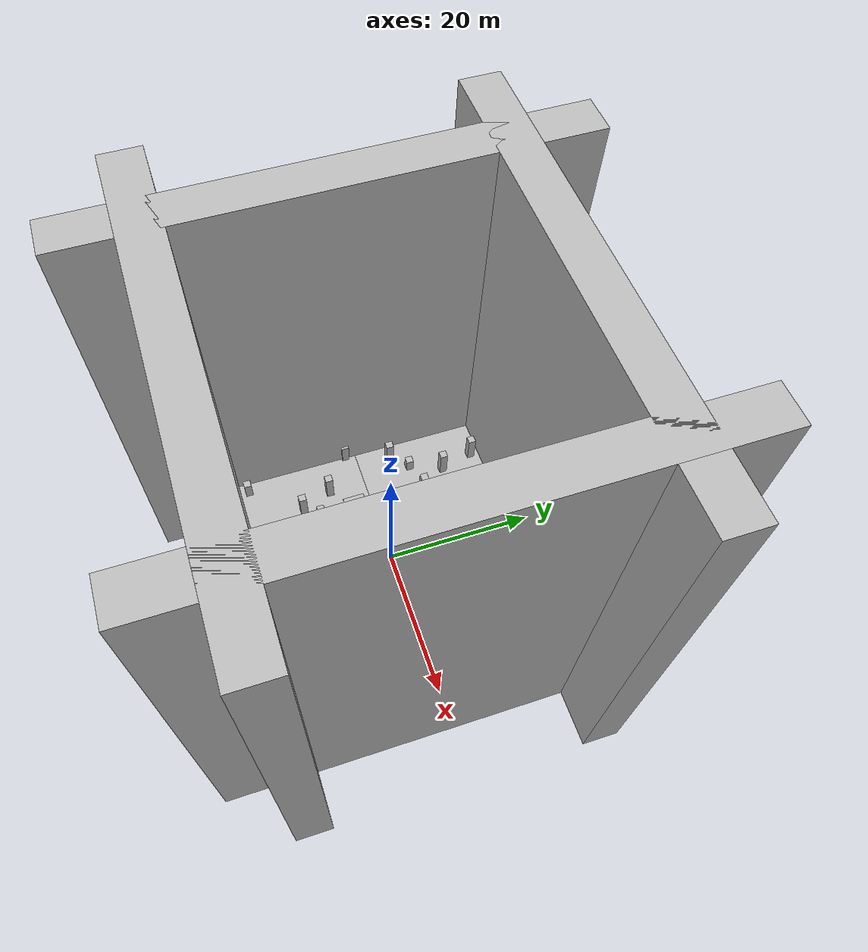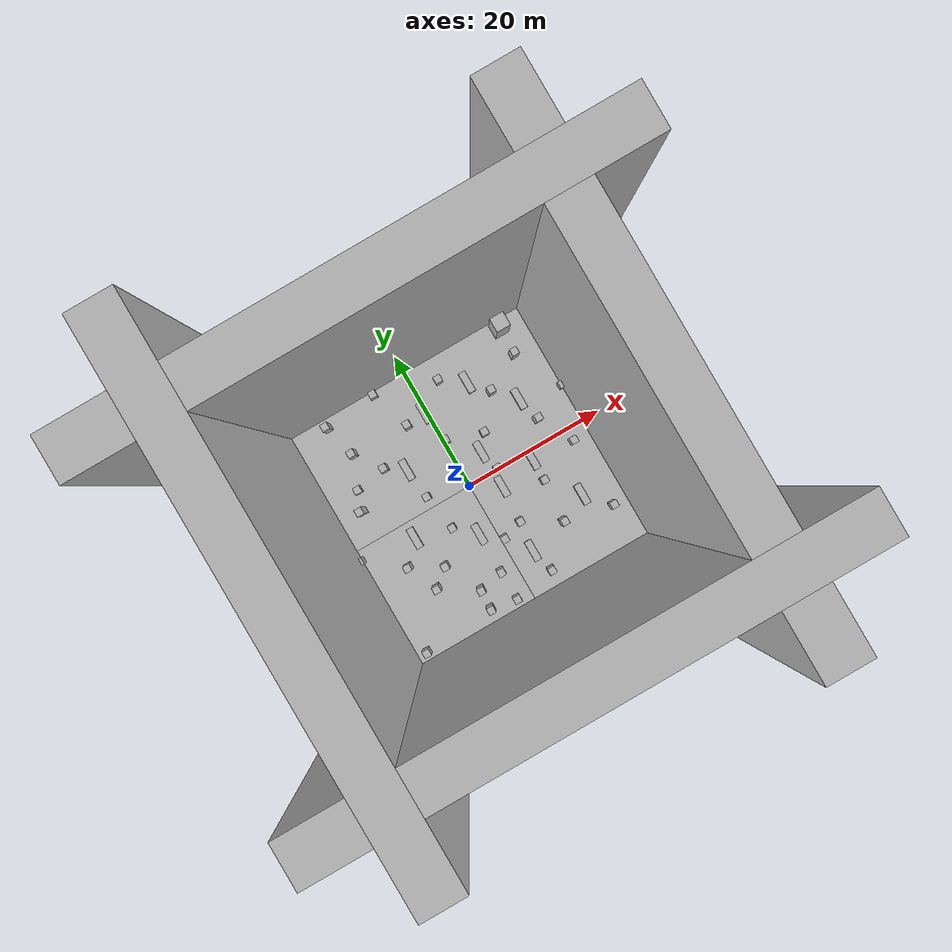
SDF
<sdf version="1.6">
 <world name="default">
  <light name="sun" type="directional">
   <pose>0 0 10 0 -0 0</pose>
   <diffuse>0.8 0.8 0.8 1</diffuse>
   <specular>0.2 0.2 0.2 1</specular>
   <attenuation>
    <range>1000</range>
    <constant>0.9</constant>
    <linear>0.01</linear>
    <quadratic>0.001</quadratic>
   </attenuation>
   <direction>-0.5 0.1 -0.9</direction>
  </light>
  <plugin name="ros_interface_plugin" filename="librotors_gazebo_ros_interface_plugin.so"/>
  <model name="gd3">
   <static>1</static>
   <link name="chassis">
    <pose>-10 10 -0.1 0 -0 0</pose>
    <collision name="collision"><geometry><box><size>20 20 0.2</size></box></geometry></collision>
    <visual name="visual">
     <geometry>
      <mesh><uri>model://ground_surface/meshes/simple_box.dae</uri><scale>20 20 0.2</scale></mesh>
     </geometry>
     <material>
      <script>
       <uri>model://ground_surface/materials/scripts</uri>
       <uri>model://ground_surface/materials/textures</uri>
       <name>BrickBox/Ground</name>
      </script>
     </material>
    </visual>
   </link>
  </model>
  <model name="bb2">
   <static>1</static>
   <link name="chassis">
    <pose>19.0671 -12.1318 1.25 0 -0 0</pose>
    <collision name="collision"><geometry><box><size>0.7 0.7 2.5</size></box></geometry></collision>
    <visual name="visual">
     <geometry>
      <mesh><uri>model://brick_box_1/meshes/simple_box.dae</uri><scale>0.7 0.7 2.5</scale></mesh>
     </geometry>
     <material>
      <script>
       <uri>model://brick_box_1/materials/scripts</uri>
       <uri>model://brick_box_1/materials/textures</uri>
       <name>BrickBox/Diffuse</name>
      </script>
     </material>
    </visual>
   </link>
  </model>
  <model name="bb3">
   <static>1</static>
   <link name="chassis">
    <pose>19.0671 -0.13179 1 0 -0 0</pose>
    <collision name="collision"><geometry><box><size>1 1 2</size></box></geometry></collision>
    <visual name="visual">
     <geometry><mesh><uri>model://brick_box_1/meshes/simple_box.dae</uri><scale>1 1 2</scale></mesh></geometry>
     <material>
      <script>
       <uri>model://brick_box_1/materials/scripts</uri>
       <uri>model://brick_box_1/materials/textures</uri>
       <name>BrickBox/Diffuse</name>
      </script>
     </material>
    </visual>
   </link>
  </model>
  <model name="bb9">
   <static>1</static>
   <link name="chassis">
    <pose>-14 4.25 3 0 -0 0</pose>
    <collision name="collision"><geometry><box><size>1 1 6</size></box></geometry></collision>
    <visual name="visual">
     <geometry><mesh><uri>model://brick_box_3/meshes/simple_box.dae</uri><scale>1 1 6</scale></mesh></geometry>
     <material>
      <script>
       <uri>model://brick_box_3/materials/scripts</uri>
       <uri>model://brick_box_3/materials/textures</uri>
       <name>BrickBox/Sea</name>
      </script>
     </material>
    </visual>
   </link>
  </model>
  <model name="bb10">
   <static>1</static>
   <link name="chassis">
    <pose>14 16.25 3 0 -0 0</pose>
    <collision name="collision"><geometry><box><size>2 2 6</size></box></geometry></collision>
    <visual name="visual">
     <geometry><mesh><uri>model://brick_box_3/meshes/simple_box.dae</uri><scale>2 2 6</scale></mesh></geometry>
     <material>
      <script>
       <uri>model://brick_box_3/materials/scripts</uri>
       <uri>model://brick_box_3/materials/textures</uri>
       <name>BrickBox/Sea</name>
      </script>
     </material>
    </visual>
   </link>
  </model>
  <model name="bb14">
   <static>1</static>
   <link name="chassis">
    <pose>9.0671 -1.13179 0.5 0 -0 0</pose>
    <collision name="collision"><geometry><box><size>1 3 1</size></box></geometry></collision>
    <visual name="visual">
     <geometry><mesh><uri>model://brick_box_3/meshes/simple_box.dae</uri><scale>1 3 1</scale></mesh></geometry>
     <material>
      <script>
       <uri>model://brick_box_3/materials/scripts</uri>
       <uri>model://brick_box_3/materials/textures</uri>
       <name>BrickBox/Sea</name>
      </script>
     </material>
    </visual>
   </link>
  </model>
  <model name="wall1">
   <static>1</static>
   <link name="chassis">
    <pose>-20 0 20 0 -0 0</pose>
    <collision name="collision"><geometry><box><size>5 60 60</size></box></geometry></collision>
    <visual name="visual">
     <geometry>
      <mesh><uri>model://ground_surface/meshes/simple_box.dae</uri><scale>5 60 60</scale></mesh>
     </geometry>
     <material>
      <script>
       <uri>model://ground_surface/materials/scripts</uri>
       <uri>model://ground_surface/materials/textures</uri>
       <name>BrickBox/Ground</name>
      </script>
     </material>
    </visual>
   </link>
  </model>
  <model name="wall2">
   <static>1</static>
   <link name="chassis">
    <pose>0 -20 20 0 -0 0</pose>
    <collision name="collision"><geometry><box><size>60 5 60</size></box></geometry></collision>
    <visual name="visual">
     <geometry>
      <mesh><uri>model://ground_surface/meshes/simple_box.dae</uri><scale>60 5 60</scale></mesh>
     </geometry>
     <material>
      <script>
       <uri>model://ground_surface/materials/scripts</uri>
       <uri>model://ground_surface/materials/textures</uri>
       <name>BrickBox/Ground</name>
      </script>
     </material>
    </visual>
   </link>
  </model>
  <model name="wall3">
   <static>1</static>
   <link name="chassis">
    <pose>0 20 20 0 -0 0</pose>
    <collision name="collision"><geometry><box><size>60 5 60</size></box></geometry></collision>
    <visual name="visual">
     <geometry>
      <mesh><uri>model://ground_surface/meshes/simple_box.dae</uri><scale>60 5 60</scale></mesh>
     </geometry>
     <material>
      <script>
       <uri>model://ground_surface/materials/scripts</uri>
       <uri>model://ground_surface/materials/textures</uri>
       <name>BrickBox/Ground</name>
      </script>
     </material>
    </visual>
   </link>
  </model>
  <model name="wall4">
   <static>1</static>
   <link name="chassis">
    <pose>20 0 20 0 -0 0</pose>
    <collision name="collision"><geometry><box><size>5 60 60</size></box></geometry></collision>
    <visual name="visual">
     <geometry>
      <mesh><uri>model://ground_surface/meshes/simple_box.dae</uri><scale>5 60 60</scale></mesh>
     </geometry>
     <material>
      <script>
       <uri>model://ground_surface/materials/scripts</uri>
       <uri>model://ground_surface/materials/textures</uri>
       <name>BrickBox/Ground</name>
      </script>
     </material>
    </visual>
   </link>
  </model>
  <model name="brick_box_3_0">
   <static>1</static>
   <link name="chassis">
    <pose>-4.76455 -3.62531 2 0 -0 0</pose>
    <collision name="collision"><geometry><box><size>1 1 4</size></box></geometry></collision>
    <visual name="visual">
     <geometry><mesh><uri>model://brick_box_3/meshes/simple_box.dae</uri><scale>1 1 4</scale></mesh></geometry>
     <material>
      <script>
       <uri>model://brick_box_3/materials/scripts</uri>
       <uri>model://brick_box_3/materials/textures</uri>
       <name>BrickBox/Sea</name>
      </script>
     </material>
    </visual>
   </link>
  </model>
  <model name="brick_box_2_2">
   <static>1</static>
   <link name="chassis">
    <pose>0 0 2 0 -0 0</pose>
    <collision name="collision"><geometry><box><size>1 1 4</size></box></geometry></collision>
    <visual name="visual">
     <geometry><mesh><uri>model://brick_box_2/meshes/simple_box.dae</uri><scale>1 1 4</scale></mesh></geometry>
     <material>
      <script>
       <uri>model://brick_box_2/materials/scripts</uri>
       <uri>model://brick_box_2/materials/textures</uri>
       <name>BrickBox/Flower</name>
      </script>
     </material>
    </visual>
   </link>
   <pose>-12.4848 16.1918 0 0 -0 0</pose>
  </model>
  <model name="brick_box_1_3">
   <static>1</static>
   <link name="chassis">
    <pose>0 0 2 0 -0 0</pose>
    <collision name="collision"><geometry><box><size>1 1 4</size></box></geometry></collision>
    <visual name="visual">
     <geometry><mesh><uri>model://brick_box_1/meshes/simple_box.dae</uri><scale>1 1 4</scale></mesh></geometry>
     <material>
      <script>
       <uri>model://brick_box_1/materials/scripts</uri>
       <uri>model://brick_box_1/materials/textures</uri>
       <name>BrickBox/Diffuse</name>
      </script>
     </material>
    </visual>
   </link>
   <pose>-8.13545 -7.56426 0 0 -0 0</pose>
  </model>
  <model name="brick_box_2_8">
   <static>1</static>
   <link name="chassis">
    <pose>0 0 1 0 -0 0</pose>
    <collision name="collision"><geometry><box><size>1 1 2</size></box></geometry></collision>
    <visual name="visual">
     <geometry><mesh><uri>model://brick_box_2/meshes/simple_box.dae</uri><scale>1 1 2</scale></mesh></geometry>
     <material>
      <script>
       <uri>model://brick_box_2/materials/scripts</uri>
       <uri>model://brick_box_2/materials/textures</uri>
       <name>BrickBox/Flower</name>
      </script>
     </material>
    </visual>
   </link>
   <pose>17.4886 5.51244 0 0 -0 0</pose>
  </model>
  <model name="brick_box_2_9">
   <static>1</static>
   <link name="chassis">
    <pose>0 0 2 0 -0 0</pose>
    <collision name="collision"><geometry><box><size>1 1 4</size></box></geometry></collision>
    <visual name="visual">
     <geometry><mesh><uri>model://brick_box_2/meshes/simple_box.dae</uri><scale>1 1 4</scale></mesh></geometry>
     <material>
      <script>
       <uri>model://brick_box_2/materials/scripts</uri>
       <uri>model://brick_box_2/materials/textures</uri>
       <name>BrickBox/Flower</name>
      </script>
     </material>
    </visual>
   </link>
   <pose>-5.76183 -15.5229 0 0 -0 0</pose>
  </model>
  <model name="brick_box_2_10">
   <static>1</static>
   <link name="chassis">
    <pose>0 0 1 0 -0 0</pose>
    <collision name="collision"><geometry><box><size>1 1 2</size></box></geometry></collision>
    <visual name="visual">
     <geometry><mesh><uri>model://brick_box_2/meshes/simple_box.dae</uri><scale>1 1 2</scale></mesh></geometry>
     <material>
      <script>
       <uri>model://brick_box_2/materials/scripts</uri>
       <uri>model://brick_box_2/materials/textures</uri>
       <name>BrickBox/Flower</name>
      </script>
     </material>
    </visual>
   </link>
   <pose>-13.17 7.00064 0 0 -0 0</pose>
  </model>
  <model name="brick_box_3_4">
   <static>1</static>
   <link name="chassis">
    <pose>0 0 2 0 -0 0</pose>
    <collision name="collision"><geometry><box><size>1 1 4</size></box></geometry></collision>
    <visual name="visual">
     <geometry><mesh><uri>model://brick_box_3/meshes/simple_box.dae</uri><scale>1 1 4</scale></mesh></geometry>
     <material>
      <script>
       <uri>model://brick_box_3/materials/scripts</uri>
       <uri>model://brick_box_3/materials/textures</uri>
       <name>BrickBox/Sea</name>
      </script>
     </material>
    </visual>
   </link>
   <pose>-8.63812 7.71492 0 0 -0 0</pose>
  </model>
  <model name="brick_box_3_5">
   <static>1</static>
   <link name="chassis">
    <pose>0 0 2 0 -0 0</pose>
    <collision name="collision"><geometry><box><size>1 1 4</size></box></geometry></collision>
    <visual name="visual">
     <geometry><mesh><uri>model://brick_box_3/meshes/simple_box.dae</uri><scale>1 1 4</scale></mesh></geometry>
     <material>
      <script>
       <uri>model://brick_box_3/materials/scripts</uri>
       <uri>model://brick_box_3/materials/textures</uri>
       <name>BrickBox/Sea</name>
      </script>
     </material>
    </visual>
   </link>
   <pose>0.504016 -8.36044 0 0 -0 0</pose>
  </model>
  <model name="brick_box_3_6">
   <static>1</static>
   <link name="chassis">
    <pose>0 0 1.5 0 -0 0</pose>
    <collision name="collision"><geometry><box><size>1 1 3</size></box></geometry></collision>
    <visual name="visual">
     <geometry><mesh><uri>model://brick_box_3/meshes/simple_box.dae</uri><scale>1 1 3</scale></mesh></geometry>
     <material>
      <script>
       <uri>model://brick_box_3/materials/scripts</uri>
       <uri>model://brick_box_3/materials/textures</uri>
       <name>BrickBox/Sea</name>
      </script>
     </material>
    </visual>
   </link>
   <pose>3.79789 -15.1346 0 0 -0 0</pose>
  </model>
  <model name="brick_box_1_10">
   <static>1</static>
   <link name="chassis">
    <pose>0 0 1.5 0 -0 0</pose>
    <collision name="collision"><geometry><box><size>1 1 3</size></box></geometry></collision>
    <visual name="visual">
     <geometry><mesh><uri>model://brick_box_1/meshes/simple_box.dae</uri><scale>1 1 3</scale></mesh></geometry>
     <material>
      <script>
       <uri>model://brick_box_1/materials/scripts</uri>
       <uri>model://brick_box_1/materials/textures</uri>
       <name>BrickBox/Diffuse</name>
      </script>
     </material>
    </visual>
   </link>
   <pose>-17.6324 -1.44559 0 0 -0 0</pose>
  </model>
  <model name="brick_box_1_11">
   <static>1</static>
   <link name="chassis">
    <pose>0 0 1 0 -0 0</pose>
    <collision name="collision"><geometry><box><size>1 1 2</size></box></geometry></collision>
    <visual name="visual">
     <geometry><mesh><uri>model://brick_box_1/meshes/simple_box.dae</uri><scale>1 1 2</scale></mesh></geometry>
     <material>
      <script>
       <uri>model://brick_box_1/materials/scripts</uri>
       <uri>model://brick_box_1/materials/textures</uri>
       <name>BrickBox/Diffuse</name>
      </script>
     </material>
    </visual>
   </link>
   <pose>-5.03514 16.9812 0 0 -0 0</pose>
  </model>
  <model name="brick_box_3_10">
   <static>1</static>
   <link name="chassis">
    <pose>0 0 1.5 0 -0 0</pose>
    <collision name="collision"><geometry><box><size>1 1 3</size></box></geometry></collision>
    <visual name="visual">
     <geometry><mesh><uri>model://brick_box_3/meshes/simple_box.dae</uri><scale>1 1 3</scale></mesh></geometry>
     <material>
      <script>
       <uri>model://brick_box_3/materials/scripts</uri>
       <uri>model://brick_box_3/materials/textures</uri>
       <name>BrickBox/Sea</name>
      </script>
     </material>
    </visual>
   </link>
   <pose>8.98169 -4.28757 0 0 -0 0</pose>
  </model>
  <model name="brick_box_3_11">
   <static>1</static>
   <link name="chassis">
    <pose>0 0 0.5 0 -0 0</pose>
    <collision name="collision"><geometry><box><size>1 1 4</size></box></geometry></collision>
    <visual name="visual">
     <geometry><mesh><uri>model://brick_box_3/meshes/simple_box.dae</uri><scale>1 1 4</scale></mesh></geometry>
     <material>
      <script>
       <uri>model://brick_box_3/materials/scripts</uri>
       <uri>model://brick_box_3/materials/textures</uri>
       <name>BrickBox/Sea</name>
      </script>
     </material>
    </visual>
   </link>
   <pose>-2.09803 -16.1947 0 0 -0 0</pose>
  </model>
  <model name="brick_box_3_15">
   <static>1</static>
   <link name="chassis">
    <pose>0 0 0.5 0 -0 0</pose>
    <collision name="collision"><geometry><box><size>1 1 4</size></box></geometry></collision>
    <visual name="visual">
     <geometry><mesh><uri>model://brick_box_3/meshes/simple_box.dae</uri><scale>1 1 4</scale></mesh></geometry>
     <material>
      <script>
       <uri>model://brick_box_3/materials/scripts</uri>
       <uri>model://brick_box_3/materials/textures</uri>
       <name>BrickBox/Sea</name>
      </script>
     </material>
    </visual>
   </link>
   <pose>15.0215 -1.69596 0 0 -0 0</pose>
  </model>
  <model name="brick_box_3_16">
   <static>1</static>
   <link name="chassis">
    <pose>0 0 0.5 0 -0 0</pose>
    <collision name="collision"><geometry><box><size>1 1 4</size></box></geometry></collision>
    <visual name="visual">
     <geometry><mesh><uri>model://brick_box_3/meshes/simple_box.dae</uri><scale>1 1 4</scale></mesh></geometry>
     <material>
      <script>
       <uri>model://brick_box_3/materials/scripts</uri>
       <uri>model://brick_box_3/materials/textures</uri>
       <name>BrickBox/Sea</name>
      </script>
     </material>
    </visual>
   </link>
   <pose>15.322 -11.7631 0 0 -0 0</pose>
  </model>
  <model name="brick_box_3_17">
   <static>1</static>
   <link name="chassis">
    <pose>0 0 0.5 0 -0 0</pose>
    <collision name="collision"><geometry><box><size>1 1 4</size></box></geometry></collision>
    <visual name="visual">
     <geometry><mesh><uri>model://brick_box_3/meshes/simple_box.dae</uri><scale>1 1 4</scale></mesh></geometry>
     <material>
      <script>
       <uri>model://brick_box_3/materials/scripts</uri>
       <uri>model://brick_box_3/materials/textures</uri>
       <name>BrickBox/Sea</name>
      </script>
     </material>
    </visual>
   </link>
   <pose>3.47314 14.3082 0 0 -0 0</pose>
  </model>
  <model name="brick_box_2_25">
   <static>1</static>
   <link name="chassis">
    <pose>0 0 0.5 0 -0 0</pose>
    <collision name="collision"><geometry><box><size>1 1 4</size></box></geometry></collision>
    <visual name="visual">
     <geometry><mesh><uri>model://brick_box_2/meshes/simple_box.dae</uri><scale>1 1 4</scale></mesh></geometry>
     <material>
      <script>
       <uri>model://brick_box_2/materials/scripts</uri>
       <uri>model://brick_box_2/materials/textures</uri>
       <name>BrickBox/Flower</name>
      </script>
     </material>
    </visual>
   </link>
   <pose>-16.073 -16.3131 0 0 -0 0</pose>
  </model>
  <spherical_coordinates>
   <surface_model>EARTH_WGS84</surface_model>
   <latitude_deg>47.3667</latitude_deg>
   <longitude_deg>8.55</longitude_deg>
   <elevation>500</elevation>
   <heading_deg>0</heading_deg>
  </spherical_coordinates>
  <physics name="default_physics" default="0" type="ode">
   <ode>
    <solver>
     <type>quick</type>
     <iters>1000</iters>
     <sor>1.3</sor>
     <use_dynamic_moi_rescaling>0</use_dynamic_moi_rescaling>
    </solver>
    <constraints>
     <cfm>0</cfm>
     <erp>0.2</erp>
     <contact_max_correcting_vel>100</contact_max_correcting_vel>
     <contact_surface_layer>0.001</contact_surface_layer>
    </constraints>
   </ode>
   <max_step_size>0.01</max_step_size>
   <real_time_factor>1</real_time_factor>
   <real_time_update_rate>100</real_time_update_rate>
  </physics>
  <gravity>0 0 -9.8</gravity>
  <magnetic_field>6e-06 2.3e-05 -4.2e-05</magnetic_field>
  <atmosphere type="adiabatic"/>
  <scene><ambient>0.4 0.4 0.4 1</ambient><background>0.7 0.7 0.7 1</background><shadows>1</shadows></scene>
  <model name="bb11_clone">
   <static>1</static>
   <link name="chassis">
    <pose>-6.335 12 2 0 -0 0</pose>
    <collision name="collision"><geometry><box><size>1 1 4</size></box></geometry></collision>
    <visual name="visual">
     <geometry><mesh><uri>model://brick_box_1/meshes/simple_box.dae</uri><scale>1 1 4</scale></mesh></geometry>
     <material>
      <script>
       <uri>model://brick_box_1/materials/scripts</uri>
       <uri>model://brick_box_1/materials/textures</uri>
       <name>BrickBox/Diffuse</name>
      </script>
     </material>
    </visual>
   </link>
   <pose>-6.6859 11.9737 0 0 -0 0</pose>
  </model>
  <model name="bb11_clone_0">
   <static>1</static>
   <link name="chassis">
    <pose>-6.335 12 2 0 -0 0</pose>
    <collision name="collision"><geometry><box><size>1 1 4</size></box></geometry></collision>
    <visual name="visual">
     <geometry><mesh><uri>model://brick_box_1/meshes/simple_box.dae</uri><scale>1 1 4</scale></mesh></geometry>
     <material>
      <script>
       <uri>model://brick_box_1/materials/scripts</uri>
       <uri>model://brick_box_1/materials/textures</uri>
       <name>BrickBox/Diffuse</name>
      </script>
     </material>
    </visual>
   </link>
   <pose>-6.4619 12.5586 0 0 -0 0</pose>
  </model>
  <model name="bb11_clone_1">
   <static>1</static>
   <link name="chassis">
    <pose>-6.335 12 2 0 -0 0</pose>
    <collision name="collision"><geometry><box><size>1 1 4</size></box></geometry></collision>
    <visual name="visual">
     <geometry><mesh><uri>model://brick_box_1/meshes/simple_box.dae</uri><scale>1 1 4</scale></mesh></geometry>
     <material>
      <script>
       <uri>model://brick_box_1/materials/scripts</uri>
       <uri>model://brick_box_1/materials/textures</uri>
       <name>BrickBox/Diffuse</name>
      </script>
     </material>
    </visual>
   </link>
   <pose>-10.4807 11.8998 0 0 -0 0</pose>
  </model>
  <model name="brick_box_3_4_clone">
   <static>1</static>
   <link name="chassis">
    <pose>0 0 2 0 -0 0</pose>
    <collision name="collision"><geometry><box><size>1 1 4</size></box></geometry></collision>
    <visual name="visual">
     <geometry><mesh><uri>model://brick_box_3/meshes/simple_box.dae</uri><scale>1 1 4</scale></mesh></geometry>
     <material>
      <script>
       <uri>model://brick_box_3/materials/scripts</uri>
       <uri>model://brick_box_3/materials/textures</uri>
       <name>BrickBox/Sea</name>
      </script>
     </material>
    </visual>
   </link>
   <pose>-11.3205 11.4819 0 0 -0 0</pose>
  </model>
  <model name="brick_box_3_0_clone">
   <static>1</static>
   <link name="chassis">
    <pose>-4.76455 -3.62531 2 0 -0 0</pose>
    <collision name="collision"><geometry><box><size>1 1 4</size></box></geometry></collision>
    <visual name="visual">
     <geometry><mesh><uri>model://brick_box_3/meshes/simple_box.dae</uri><scale>1 1 4</scale></mesh></geometry>
     <material>
      <script>
       <uri>model://brick_box_3/materials/scripts</uri>
       <uri>model://brick_box_3/materials/textures</uri>
       <name>BrickBox/Sea</name>
      </script>
     </material>
    </visual>
   </link>
   <pose>9.14556 3.83106 0 0 -0 0</pose>
  </model>
  <model name="brick_box_3_0_clone_0">
   <static>1</static>
   <link name="chassis">
    <pose>-4.76455 -3.62531 2 0 -0 0</pose>
    <collision name="collision"><geometry><box><size>1 1 4</size></box></geometry></collision>
    <visual name="visual">
     <geometry><mesh><uri>model://brick_box_3/meshes/simple_box.dae</uri><scale>1 1 4</scale></mesh></geometry>
     <material>
      <script>
       <uri>model://brick_box_3/materials/scripts</uri>
       <uri>model://brick_box_3/materials/textures</uri>
       <name>BrickBox/Sea</name>
      </script>
     </material>
    </visual>
   </link>
   <pose>1.66519 14.7334 0 0 -0 0</pose>
  </model>
  <model name="brick_box_3_0_clone_1">
   <static>1</static>
   <link name="chassis">
    <pose>-4.76455 -3.62531 2 0 -0 0</pose>
    <collision name="collision"><geometry><box><size>1 1 4</size></box></geometry></collision>
    <visual name="visual">
     <geometry><mesh><uri>model://brick_box_3/meshes/simple_box.dae</uri><scale>1 1 4</scale></mesh></geometry>
     <material>
      <script>
       <uri>model://brick_box_3/materials/scripts</uri>
       <uri>model://brick_box_3/materials/textures</uri>
       <name>BrickBox/Sea</name>
      </script>
     </material>
    </visual>
   </link>
   <pose>5.06592 10.453 0 0 -0 0</pose>
  </model>
  <model name="brick_box_3_0_clone_2">
   <static>1</static>
   <link name="chassis">
    <pose>-4.76455 -3.62531 2 0 -0 0</pose>
    <collision name="collision"><geometry><box><size>1 1 4</size></box></geometry></collision>
    <visual name="visual">
     <geometry><mesh><uri>model://brick_box_3/meshes/simple_box.dae</uri><scale>1 1 4</scale></mesh></geometry>
     <material>
      <script>
       <uri>model://brick_box_3/materials/scripts</uri>
       <uri>model://brick_box_3/materials/textures</uri>
       <name>BrickBox/Sea</name>
      </script>
     </material>
    </visual>
   </link>
   <pose>8.16747 -3.79329 0 0 -0 0</pose>
  </model>
  <model name="brick_box_3_0_clone_3">
   <static>1</static>
   <link name="chassis">
    <pose>-4.76455 -3.62531 2 0 -0 0</pose>
    <collision name="collision"><geometry><box><size>1 1 4</size></box></geometry></collision>
    <visual name="visual">
     <geometry><mesh><uri>model://brick_box_3/meshes/simple_box.dae</uri><scale>1 1 4</scale></mesh></geometry>
     <material>
      <script>
       <uri>model://brick_box_3/materials/scripts</uri>
       <uri>model://brick_box_3/materials/textures</uri>
       <name>BrickBox/Sea</name>
      </script>
     </material>
    </visual>
   </link>
   <pose>13.2129 -6.68049 0 0 -0 0</pose>
  </model>
  <model name="brick_box_3_0_clone_4">
   <static>1</static>
   <link name="chassis">
    <pose>-4.76455 -3.62531 2 0 -0 0</pose>
    <collision name="collision"><geometry><box><size>1 1 4</size></box></geometry></collision>
    <visual name="visual">
     <geometry><mesh><uri>model://brick_box_3/meshes/simple_box.dae</uri><scale>1 1 4</scale></mesh></geometry>
     <material>
      <script>
       <uri>model://brick_box_3/materials/scripts</uri>
       <uri>model://brick_box_3/materials/textures</uri>
       <name>BrickBox/Sea</name>
      </script>
     </material>
    </visual>
   </link>
   <pose>13.5787 13.1221 0 0 -0 0</pose>
  </model>
  <model name="brick_box_3_0_clone_5">
   <static>1</static>
   <link name="chassis">
    <pose>-4.76455 -3.62531 2 0 -0 0</pose>
    <collision name="collision"><geometry><box><size>1 1 4</size></box></geometry></collision>
    <visual name="visual">
     <geometry><mesh><uri>model://brick_box_3/meshes/simple_box.dae</uri><scale>1 1 4</scale></mesh></geometry>
     <material>
      <script>
       <uri>model://brick_box_3/materials/scripts</uri>
       <uri>model://brick_box_3/materials/textures</uri>
       <name>BrickBox/Sea</name>
      </script>
     </material>
    </visual>
   </link>
   <pose>10.015 8.79086 0 0 -0 0</pose>
  </model>
  <model name="brick_box_3_0_clone_6">
   <static>1</static>
   <link name="chassis">
    <pose>-4.76455 -3.62531 2 0 -0 0</pose>
    <collision name="collision"><geometry><box><size>1 1 4</size></box></geometry></collision>
    <visual name="visual">
     <geometry><mesh><uri>model://brick_box_3/meshes/simple_box.dae</uri><scale>1 1 4</scale></mesh></geometry>
     <material>
      <script>
       <uri>model://brick_box_3/materials/scripts</uri>
       <uri>model://brick_box_3/materials/textures</uri>
       <name>BrickBox/Sea</name>
      </script>
     </material>
    </visual>
   </link>
   <pose>17.0764 6.83452 0 0 -0 0</pose>
  </model>
  <model name="brick_box_3_0_clone_7">
   <static>1</static>
   <link name="chassis">
    <pose>-4.76455 -3.62531 2 0 -0 0</pose>
    <collision name="collision"><geometry><box><size>1 1 4</size></box></geometry></collision>
    <visual name="visual">
     <geometry><mesh><uri>model://brick_box_3/meshes/simple_box.dae</uri><scale>1 1 4</scale></mesh></geometry>
     <material>
      <script>
       <uri>model://brick_box_3/materials/scripts</uri>
       <uri>model://brick_box_3/materials/textures</uri>
       <name>BrickBox/Sea</name>
      </script>
     </material>
    </visual>
   </link>
   <pose>18.6825 15.8653 0 0 -0 0</pose>
  </model>
  <model name="brick_box_3_0_clone_8">
   <static>1</static>
   <link name="chassis">
    <pose>-4.76455 -3.62531 2 0 -0 0</pose>
    <collision name="collision"><geometry><box><size>1 1 4</size></box></geometry></collision>
    <visual name="visual">
     <geometry><mesh><uri>model://brick_box_3/meshes/simple_box.dae</uri><scale>1 1 4</scale></mesh></geometry>
     <material>
      <script>
       <uri>model://brick_box_3/materials/scripts</uri>
       <uri>model://brick_box_3/materials/textures</uri>
       <name>BrickBox/Sea</name>
      </script>
     </material>
    </visual>
   </link>
   <pose>-5.82865 -5.94601 0 0 -0 0</pose>
  </model>
  <model name="brick_box_3_0_clone_9">
   <static>1</static>
   <link name="chassis">
    <pose>-4.76455 -3.62531 2 0 -0 0</pose>
    <collision name="collision"><geometry><box><size>1 1 4</size></box></geometry></collision>
    <visual name="visual">
     <geometry><mesh><uri>model://brick_box_3/meshes/simple_box.dae</uri><scale>1 1 4</scale></mesh></geometry>
     <material>
      <script>
       <uri>model://brick_box_3/materials/scripts</uri>
       <uri>model://brick_box_3/materials/textures</uri>
       <name>BrickBox/Sea</name>
      </script>
     </material>
    </visual>
   </link>
   <pose>-7.71905 -1.6156 0 0 -0 0</pose>
  </model>
  <model name="brick_box_3_0_clone_10">
   <static>1</static>
   <link name="chassis">
    <pose>-4.76455 -3.62531 2 0 -0 0</pose>
    <collision name="collision"><geometry><box><size>1 1 4</size></box></geometry></collision>
    <visual name="visual">
     <geometry><mesh><uri>model://brick_box_3/meshes/simple_box.dae</uri><scale>1 1 4</scale></mesh></geometry>
     <material>
      <script>
       <uri>model://brick_box_3/materials/scripts</uri>
       <uri>model://brick_box_3/materials/textures</uri>
       <name>BrickBox/Sea</name>
      </script>
     </material>
    </visual>
   </link>
   <pose>-0.84445 5.20252 0 0 -0 0</pose>
  </model>
  <model name="brick_box_3_0_clone_11">
   <static>1</static>
   <link name="chassis">
    <pose>-4.76455 -3.62531 2 0 -0 0</pose>
    <collision name="collision"><geometry><box><size>1 1 4</size></box></geometry></collision>
    <visual name="visual">
     <geometry><mesh><uri>model://brick_box_3/meshes/simple_box.dae</uri><scale>1 1 4</scale></mesh></geometry>
     <material>
      <script>
       <uri>model://brick_box_3/materials/scripts</uri>
       <uri>model://brick_box_3/materials/textures</uri>
       <name>BrickBox/Sea</name>
      </script>
     </material>
    </visual>
   </link>
   <pose>-0.85468 -9.06469 0 0 -0 0</pose>
  </model>
  <model name="brick_box_3_5_clone">
   <static>1</static>
   <link name="chassis">
    <pose>0 0 2 0 -0 0</pose>
    <collision name="collision"><geometry><box><size>1 1 4</size></box></geometry></collision>
    <visual name="visual">
     <geometry><mesh><uri>model://brick_box_3/meshes/simple_box.dae</uri><scale>1 1 4</scale></mesh></geometry>
     <material>
      <script>
       <uri>model://brick_box_3/materials/scripts</uri>
       <uri>model://brick_box_3/materials/textures</uri>
       <name>BrickBox/Sea</name>
      </script>
     </material>
    </visual>
   </link>
   <pose>-2.11978 -11.9279 0 0 -0 0</pose>
  </model>
  <model name="bb14_clone">
   <static>1</static>
   <link name="chassis">
    <pose>9.0671 -1.13179 0.5 0 -0 0</pose>
    <collision name="collision"><geometry><box><size>1 3 1</size></box></geometry></collision>
    <visual name="visual">
     <geometry><mesh><uri>model://brick_box_3/meshes/simple_box.dae</uri><scale>1 3 1</scale></mesh></geometry>
     <material>
      <script>
       <uri>model://brick_box_3/materials/scripts</uri>
       <uri>model://brick_box_3/materials/textures</uri>
       <name>BrickBox/Sea</name>
      </script>
     </material>
    </visual>
   </link>
   <pose>-9.40355 12.6101 0 0 -0 0</pose>
  </model>
  <model name="bb14_clone_0">
   <static>1</static>
   <link name="chassis">
    <pose>9.0671 -1.13179 0.5 0 -0 0</pose>
    <collision name="collision"><geometry><box><size>1 3 1</size></box></geometry></collision>
    <visual name="visual">
     <geometry><mesh><uri>model://brick_box_3/meshes/simple_box.dae</uri><scale>1 3 1</scale></mesh></geometry>
     <material>
      <script>
       <uri>model://brick_box_3/materials/scripts</uri>
       <uri>model://brick_box_3/materials/textures</uri>
       <name>BrickBox/Sea</name>
      </script>
     </material>
    </visual>
   </link>
   <pose>-15.2374 7.21157 0 0 -0 0</pose>
  </model>
  <model name="bb14_clone_1">
   <static>1</static>
   <link name="chassis">
    <pose>9.0671 -1.13179 0.5 0 -0 0</pose>
    <collision name="collision"><geometry><box><size>1 3 1</size></box></geometry></collision>
    <visual name="visual">
     <geometry><mesh><uri>model://brick_box_3/meshes/simple_box.dae</uri><scale>1 3 1</scale></mesh></geometry>
     <material>
      <script>
       <uri>model://brick_box_3/materials/scripts</uri>
       <uri>model://brick_box_3/materials/textures</uri>
       <name>BrickBox/Sea</name>
      </script>
     </material>
    </visual>
   </link>
   <pose>-18.913 -1.21824 0 0 -0 0</pose>
  </model>
  <model name="bb14_clone_2">
   <static>1</static>
   <link name="chassis">
    <pose>9.0671 -1.13179 0.5 0 -0 0</pose>
    <collision name="collision"><geometry><box><size>1 3 1</size></box></geometry></collision>
    <visual name="visual">
     <geometry><mesh><uri>model://brick_box_3/meshes/simple_box.dae</uri><scale>1 3 1</scale></mesh></geometry>
     <material>
      <script>
       <uri>model://brick_box_3/materials/scripts</uri>
       <uri>model://brick_box_3/materials/textures</uri>
       <name>BrickBox/Sea</name>
      </script>
     </material>
    </visual>
   </link>
   <pose>-6.10093 -10.6201 0 0 -0 0</pose>
  </model>
  <model name="bb14_clone_3">
   <static>1</static>
   <link name="chassis">
    <pose>9.0671 -1.13179 0.5 0 -0 0</pose>
    <collision name="collision"><geometry><box><size>1 3 1</size></box></geometry></collision>
    <visual name="visual">
     <geometry><mesh><uri>model://brick_box_3/meshes/simple_box.dae</uri><scale>1 3 1</scale></mesh></geometry>
     <material>
      <script>
       <uri>model://brick_box_3/materials/scripts</uri>
       <uri>model://brick_box_3/materials/textures</uri>
       <name>BrickBox/Sea</name>
      </script>
     </material>
    </visual>
   </link>
   <pose>2.5108 7.87446 0 0 -0 0</pose>
  </model>
  <model name="bb14_clone_4">
   <static>1</static>
   <link name="chassis">
    <pose>9.0671 -1.13179 0.5 0 -0 0</pose>
    <collision name="collision"><geometry><box><size>1 3 1</size></box></geometry></collision>
    <visual name="visual">
     <geometry><mesh><uri>model://brick_box_3/meshes/simple_box.dae</uri><scale>1 3 1</scale></mesh></geometry>
     <material>
      <script>
       <uri>model://brick_box_3/materials/scripts</uri>
       <uri>model://brick_box_3/materials/textures</uri>
       <name>BrickBox/Sea</name>
      </script>
     </material>
    </visual>
   </link>
   <pose>-2.374 13.2729 0 0 -0 0</pose>
  </model>
  <model name="bb14_clone_5">
   <static>1</static>
   <link name="chassis">
    <pose>9.0671 -1.13179 0.5 0 -0 0</pose>
    <collision name="collision"><geometry><box><size>1 3 1</size></box></geometry></collision>
    <visual name="visual">
     <geometry><mesh><uri>model://brick_box_3/meshes/simple_box.dae</uri><scale>1 3 1</scale></mesh></geometry>
     <material>
      <script>
       <uri>model://brick_box_3/materials/scripts</uri>
       <uri>model://brick_box_3/materials/textures</uri>
       <name>BrickBox/Sea</name>
      </script>
     </material>
    </visual>
   </link>
   <pose>3.4044 -7.41662 0 0 -0 0</pose>
  </model>
  <model name="bb14_clone_6">
   <static>1</static>
   <link name="chassis">
    <pose>9.0671 -1.13179 0.5 0 -0 0</pose>
    <collision name="collision"><geometry><box><size>1 3 1</size></box></geometry></collision>
    <visual name="visual">
     <geometry><mesh><uri>model://brick_box_3/meshes/simple_box.dae</uri><scale>1 3 1</scale></mesh></geometry>
     <material>
      <script>
       <uri>model://brick_box_3/materials/scripts</uri>
       <uri>model://brick_box_3/materials/textures</uri>
       <name>BrickBox/Sea</name>
      </script>
     </material>
    </visual>
   </link>
   <pose>-11.1862 -5.09489 0 0 -0 0</pose>
  </model>
  <model name="gd3_clone">
   <static>1</static>
   <link name="chassis">
    <pose>-10 10 -0.1 0 -0 0</pose>
    <collision name="collision"><geometry><box><size>20 20 0.2</size></box></geometry></collision>
    <visual name="visual">
     <geometry>
      <mesh><uri>model://ground_surface/meshes/simple_box.dae</uri><scale>20 20 0.2</scale></mesh>
     </geometry>
     <material>
      <script>
       <uri>model://ground_surface/materials/scripts</uri>
       <uri>model://ground_surface/materials/textures</uri>
       <name>BrickBox/Ground</name>
      </script>
     </material>
    </visual>
   </link>
   <pose>-0.005841 -19.9936 0 0 -0 0</pose>
  </model>
  <model name="gd3_clone_0">
   <static>1</static>
   <link name="chassis">
    <pose>-10 10 -0.1 0 -0 0</pose>
    <collision name="collision"><geometry><box><size>20 20 0.2</size></box></geometry></collision>
    <visual name="visual">
     <geometry>
      <mesh><uri>model://ground_surface/meshes/simple_box.dae</uri><scale>20 20 0.2</scale></mesh>
     </geometry>
     <material>
      <script>
       <uri>model://ground_surface/materials/scripts</uri>
       <uri>model://ground_surface/materials/textures</uri>
       <name>BrickBox/Ground</name>
      </script>
     </material>
    </visual>
   </link>
   <pose>19.6552 -19.992 0 0 -0 0</pose>
  </model>
  <model name="gd3_clone_1">
   <static>1</static>
   <link name="chassis">
    <pose>-10 10 -0.1 0 -0 0</pose>
    <collision name="collision"><geometry><box><size>20 20 0.2</size></box></geometry></collision>
    <visual name="visual">
     <geometry>
      <mesh><uri>model://ground_surface/meshes/simple_box.dae</uri><scale>20 20 0.2</scale></mesh>
     </geometry>
     <material>
      <script>
       <uri>model://ground_surface/materials/scripts</uri>
       <uri>model://ground_surface/materials/textures</uri>
       <name>BrickBox/Ground</name>
      </script>
     </material>
    </visual>
   </link>
   <pose>20.0406 0.005657 0 0 -0 0</pose>
  </model>
  <model name="bb14_clone_7">
   <static>1</static>
   <link name="chassis">
    <pose>9.0671 -1.13179 0.5 0 -0 0</pose>
    <collision name="collision"><geometry><box><size>1 3 1</size></box></geometry></collision>
    <visual name="visual">
     <geometry><mesh><uri>model://brick_box_3/meshes/simple_box.dae</uri><scale>1 3 1</scale></mesh></geometry>
     <material>
      <script>
       <uri>model://brick_box_3/materials/scripts</uri>
       <uri>model://brick_box_3/materials/textures</uri>
       <name>BrickBox/Sea</name>
      </script>
     </material>
    </visual>
   </link>
   <pose>-5.32526 -1.13304 0 0 -0 0</pose>
  </model>
  <model name="bb14_clone_8">
   <static>1</static>
   <link name="chassis">
    <pose>9.0671 -1.13179 0.5 0 -0 0</pose>
    <collision name="collision"><geometry><box><size>1 3 1</size></box></geometry></collision>
    <visual name="visual">
     <geometry><mesh><uri>model://brick_box_3/meshes/simple_box.dae</uri><scale>1 3 1</scale></mesh></geometry>
     <material>
      <script>
       <uri>model://brick_box_3/materials/scripts</uri>
       <uri>model://brick_box_3/materials/textures</uri>
       <name>BrickBox/Sea</name>
      </script>
     </material>
    </visual>
   </link>
   <pose>-5.4337 4.30159 0 0 -0 0</pose>
  </model>
 </world>
</sdf>
